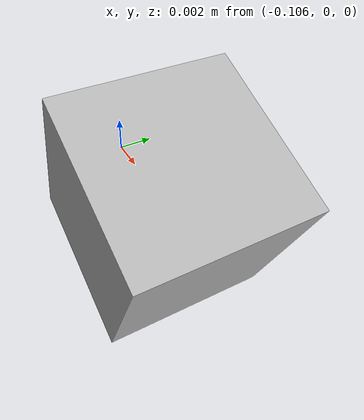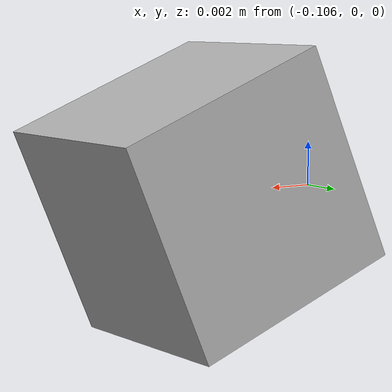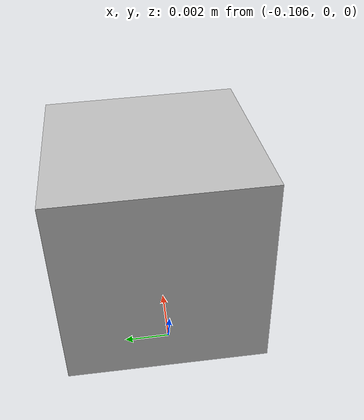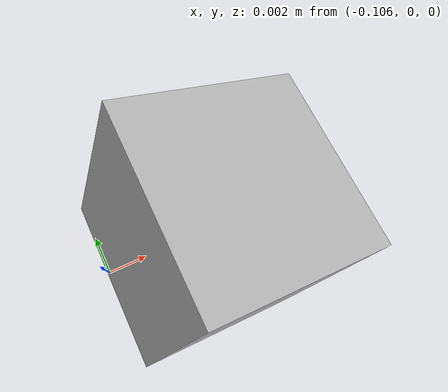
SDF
<?xml version="1.0"?>
<sdf version="1.5">
    <model name="camera">
        <pose>-0.1 0 0 0 0.4 0</pose>
        <link name='link'>
            <inertial>
            <mass>0.015</mass>
            <inertia>
                <ixx>4.15e-6</ixx>
            <ixy>0</ixy>
            <ixz>0</ixz>
            <iyy>2.407e-6</iyy>
            <iyz>0</iyz>
            <izz>2.407e-6</izz>
            </inertia>
            </inertial>
            <collision name='collision'>
            <geometry>
                <box>
                <size>0.01 0.01 0.01</size>
                </box>
            </geometry>
            <max_contacts>10</max_contacts>
            <surface>
                <contact>
                <ode/>
                </contact>
                <bounce/>
                <friction>
                <ode/>
                </friction>
            </surface>
            </collision>
            <visual name='visual'>
            <geometry>
                <box>
                <size>0.01 0.01 0.01</size>
                </box>
            </geometry>
            </visual>
            <sensor name="fps_camera" type="camera">
                <camera>
                    <horizontal_fov>1.57</horizontal_fov>
                    <image>
                        <width>1280</width>
                        <height>720</height>
                    </image>
                    <clip>
                        <near>0.1</near>
                        <far>100</far>
                    </clip>
                </camera>
                <always_on>1</always_on>
                <update_rate>60.0</update_rate>
                <visualize>true</visualize>
                <plugin name="camera_controller" filename="libgazebo_ros_camera.so">
                    <cameraInfoTopicName>camera_info</cameraInfoTopicName>
                    <cameraName>usb_cam</cameraName>
                    <frameName>camera_link</frameName>
                    <imageTopicName>image_raw</imageTopicName>
                    <robotNamespace></robotNamespace>
                </plugin>
            </sensor>
        </link>
    </model>
</sdf>
